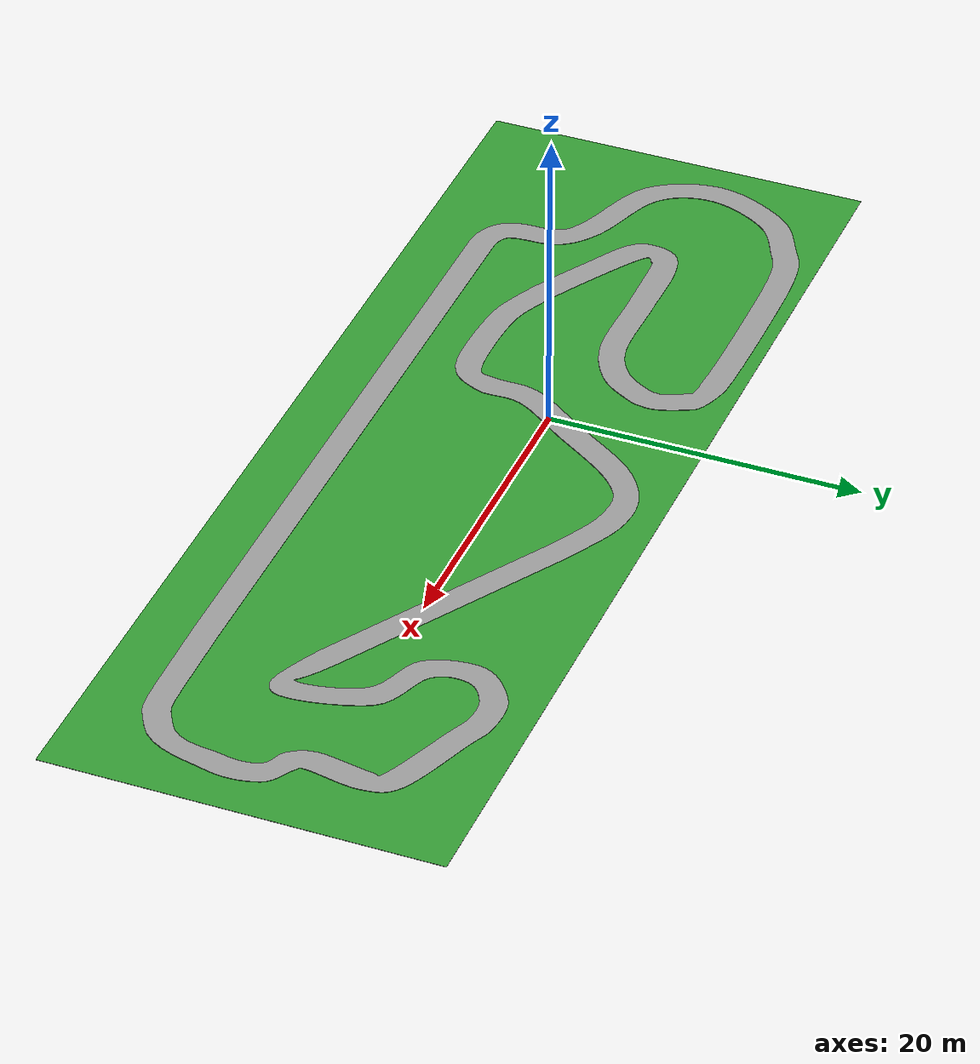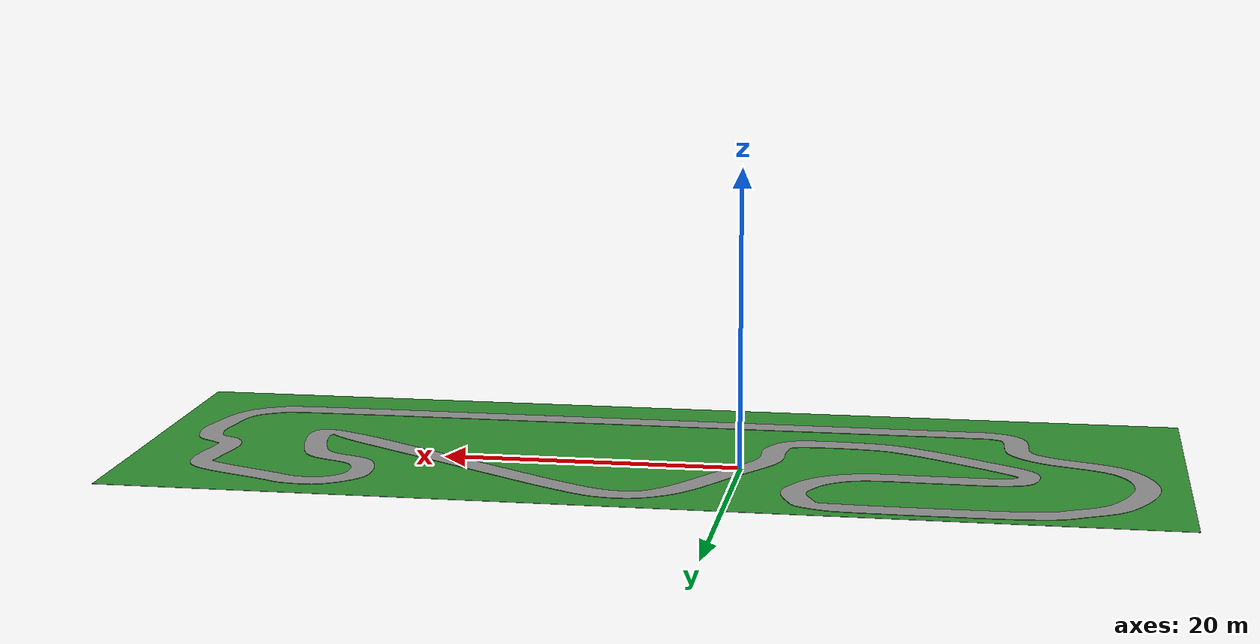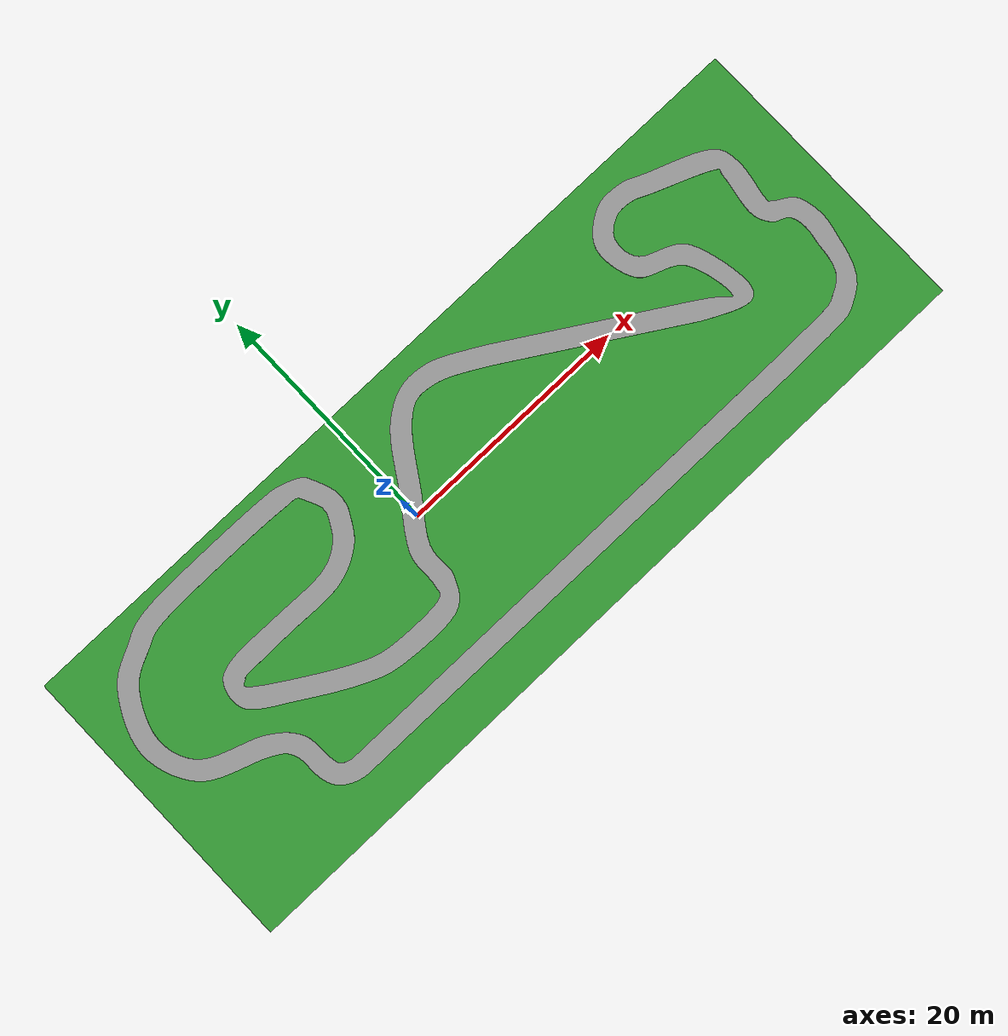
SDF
<sdf version='1.6'>
	<world name='default'>
	<gravity>0 0 -9.8</gravity>
		<model name='part1.obj'>
			<static>1</static>
			<pose frame=''>0 0 0 0 0 0</pose>
			<link name='link_d1'>
			<inertial>
			<mass>0</mass>
			<inertia>
			<ixx>0.166667</ixx>
			<ixy>0</ixy>
			<ixz>0</ixz>
			<iyy>0.166667</iyy>
			<iyz>0</iyz>
			<izz>0.166667</izz>
			</inertia>
			</inertial>
			<collision concave='yes' name='collision_1'>
			<geometry>
			<mesh>
			<scale>1 1 1</scale>
				<uri>part1.obj</uri>
			</mesh>
			</geometry>
			  </collision>
			<visual name='visual'>
				<geometry>
				<mesh>
					<scale>1 1 1</scale>
					<uri>part1.obj</uri>
				</mesh>
				</geometry>
			<material>
				<ambient>1 1 1 1</ambient>
				<diffuse>0.2 0.6 0.2 1</diffuse>
				<specular>0.1 0.1 0.1 1</specular>
				<emissive>0 0 0 0</emissive>
			 </material>
			 </visual>
			 </link>
		</model>
		<model name='part6.obj'>
			<static>1</static>
			<pose frame=''>0 0 0 0 0 0</pose>
			<link name='link_d6'>
			<inertial>
			<mass>0</mass>
			<inertia>
			<ixx>0.166667</ixx>
			<ixy>0</ixy>
			<ixz>0</ixz>
			<iyy>0.166667</iyy>
			<iyz>0</iyz>
			<izz>0.166667</izz>
			</inertia>
			</inertial>
			<collision concave='yes' name='collision_6'>
			<geometry>
			<mesh>
			<scale>1 1 1</scale>
				<uri>part6.obj</uri>
			</mesh>
			</geometry>
			  </collision>
			<visual name='visual'>
				<geometry>
				<mesh>
					<scale>1 1 1</scale>
					<uri>part6.obj</uri>
				</mesh>
				</geometry>
			<material>
				<ambient>1 1 1 1</ambient>
				<diffuse>0.6 0.6 0.6 1.000000</diffuse>
				<specular>0.1 0.1 0.1 1</specular>
				<emissive>0 0 0 0</emissive>
			 </material>
			 </visual>
			 </link>
			</model>
	</world>
</sdf>
